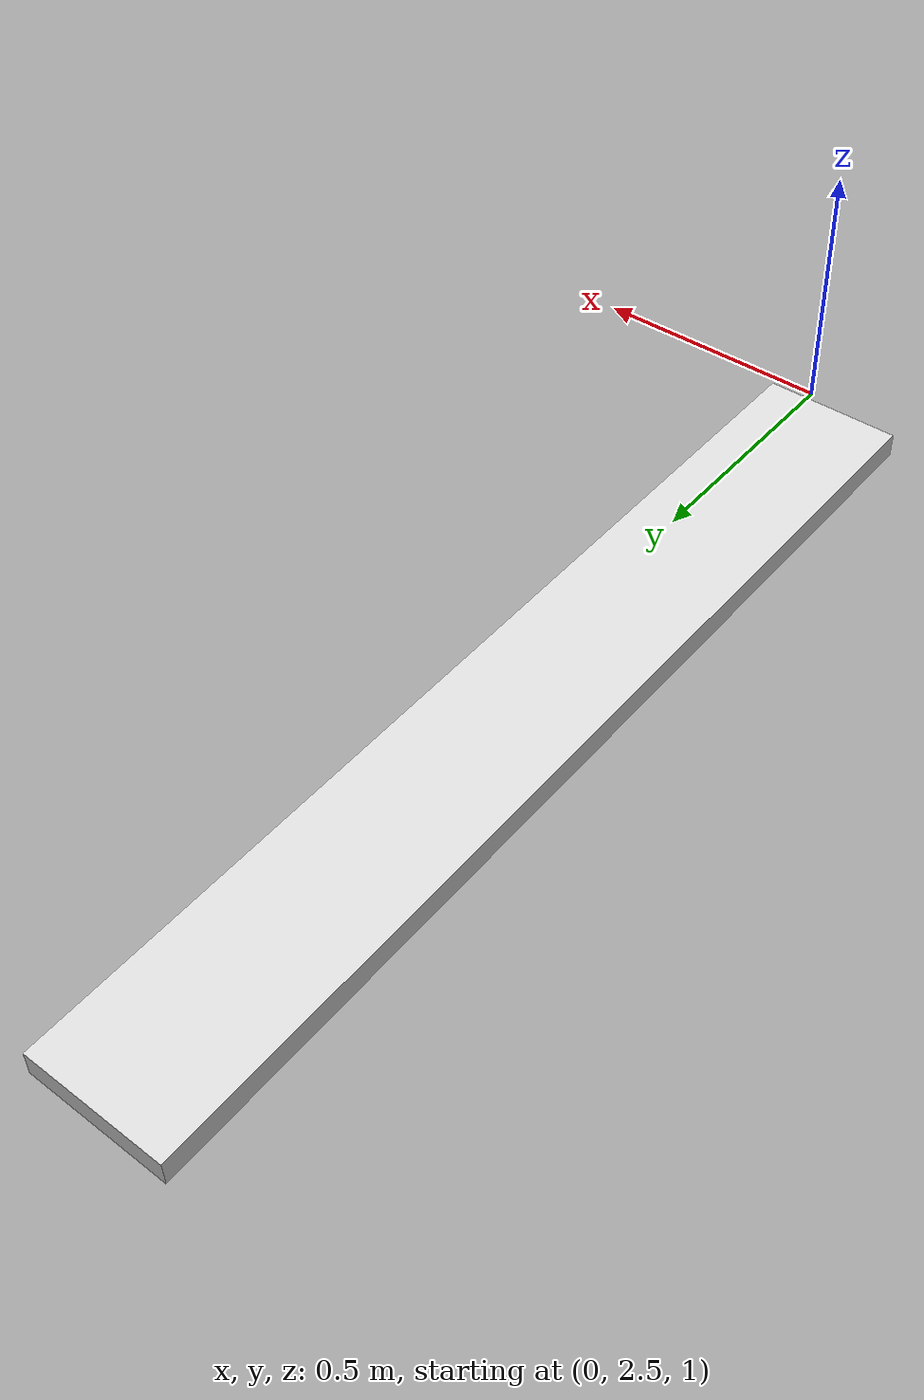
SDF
<?xml version="1.0" ?>
<!-- tmp sdf file generated from LISDF -->
<sdf version="1.9">
  <world name="tmp_world">

<model name="counter_back#2">
  <static>True</static>
  <pose>-0.0860000029206276 3.553999900817871 1.0240000486373901 0.0 -0.0 0.0</pose>
  <link name="box">

    <inertial>
      <mass>0</mass>
      <pose>0.0 0.0 0.0 0.0 -0.0 0.0</pose>
      <inertia>
        <ixx>0</ixx>
        <ixy>0</ixy>
        <ixz>0</ixz>
        <iyy>0</iyy>
        <iyz>0</iyz>
        <izz>0</izz>
      </inertia>
    </inertial>
    <collision name="box_collision">>
      <pose>0.0 0.0 0.0 0.0 -0.0 0.0</pose>
      <geometry>
        <box>
          <size>0.2770000100135803 1.9609999656677246 0.05000000074505806</size>
        </box>
      </geometry>

    </collision>
    <visual name="box_visual">
      <pose>0.0 0.0 0.0 0.0 -0.0 0.0</pose>
      <geometry>
        <box>
          <size>0.2770000100135803 1.9609999656677246 0.05000000074505806</size>
        </box>
      </geometry>
      <material>
        <ambient>1.0 1.0 1.0 1.0</ambient>
        <diffuse>0.8500000238418579 0.8500000238418579 0.8500000238418579 1.0</diffuse>
        <specular>0.0 0.0 0.0 1.0</specular>
        <emissive>0.0 0.0 0.0 1.0</emissive>
      </material>
      <cast_shadows>True</cast_shadows>
    </visual>
    <self_collide>True</self_collide>
  </link>

</model>

  </world>
</sdf>
